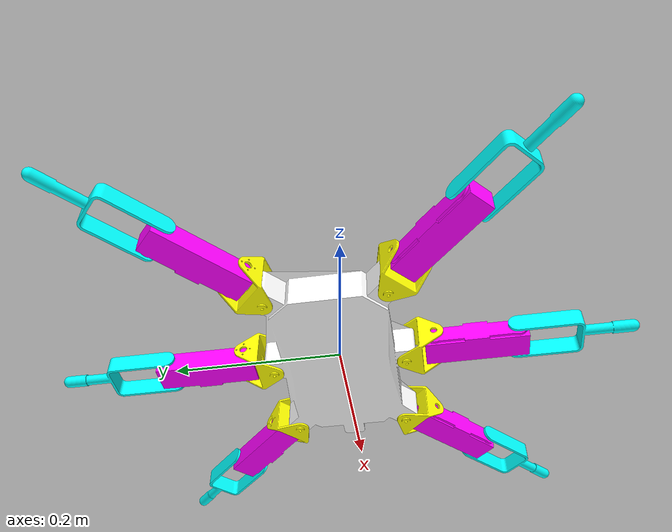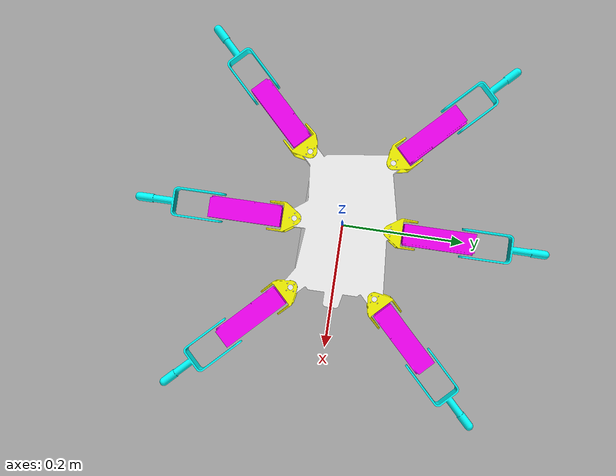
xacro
<?xml version="1.0"?>

<robot xmlns:xacro="http://www.ros.org/wiki/xacro" name="hexapod_scarab">

	<xacro:include filename="$(find hexapod_scarab)/urdf/hexy.gazebo"/>

<!-- Geometry and mass parameters -->
	<xacro:property name="body_width_s" value="0.135"/>
	<xacro:property name="body_width_b" value="0.155"/>
	<xacro:property name="body_length" value="0.220"/>
	<xacro:property name="body_heigth" value="0.04"/>
	<xacro:property name="L1_length" value="0.034"/>
	<xacro:property name="L2_length" value="0.095"/>
	<xacro:property name="L3_length" value="0.142"/>
	<xacro:property name="L_width" value="0.02"/>

	<xacro:property name="body_mass" value="1.0"/>
	<xacro:property name="L1_mass" value="0.5"/>
	<xacro:property name="L2_mass" value="0.5"/>
	<xacro:property name="L3_mass" value="0.5"/>

	<xacro:property name="max_angle" value="150"/>

	<xacro:property name="damp" value="0.9" />

	<xacro:macro name="default_inertial" params="i_value mass">
		<inertial>
			<origin xyz="0 0 0" rpy="0 0 0"/>
			<mass value="${mass}" />
			<inertia ixx="${i_value}" ixy="0.0" ixz="0.0" iyy="${i_value}" iyz="0.0" izz="${i_value}" />
		</inertial>
	</xacro:macro>

	<!-- Build a body (thorax) -->

    <link name="body">
      <visual>
        <geometry>
          <mesh filename="package://hexapod_scarab/meshes/thorax.dae"/>
        </geometry>
        <origin rpy="0 0 0" xyz="0 0 0"/>
        <material name="white">
          <color rgba="1 1 1 1"/>
        </material>
      </visual>
      <collision>
      	<origin rpy="0 0 0" xyz="0 0 0"/>
        <geometry>
          <mesh filename="package://hexapod_scarab/meshes/thorax_simpler.dae" scale="0.001 0.001 0.001"/>
        </geometry>
      </collision>
      <xacro:default_inertial i_value="1.0" mass="${body_mass}"/>
    </link>

	<!-- Build a leg -->
    <xacro:macro name="leg" params="side num x y angle coxa_angle_sign">

	    <joint name="coxa_joint_${side}${num}" type="revolute">
	      <parent link="body"/>
	      <child link="coxa_${side}${num}"/>
	      <axis xyz="0 0 ${coxa_angle_sign}"/>
	      <origin rpy="0 0 ${angle}" xyz="${x} ${y} 0"/>
	      <dynamics damping="${damp}" friction="0.8"/>
	      <limit effort ="200.0" lower="${radians(-max_angle)}" upper="${radians(max_angle)}" velocity="1.5"/>
	    </joint>

	    <link name="coxa_${side}${num}">
	      <visual>
	        <geometry>
	          <mesh filename="package://hexapod_scarab/meshes/coxa_left.dae"/>
	        </geometry>
	        <origin rpy="0 0 0" xyz="0 0 0"/>
	        <material name="yellow">
	          <color rgba="255 255 0 1"/>
	        </material>
	      </visual>
	      <collision>
	      	<origin rpy="0 0 0" xyz="0 0 0"/>
	        <geometry>
	          <mesh filename="package://hexapod_scarab/meshes/coxa_simpler.dae" scale="0.001 0.001 0.001"/>
	        </geometry>
	      </collision>
	      <xacro:default_inertial i_value="1.0" mass="${L1_mass}"/>
	    </link>

	    <link name="femur_${side}${num}">
	      <visual>
	        <geometry>
	          <mesh filename="package://hexapod_scarab/meshes/femur_left.dae" scale="0.001 0.001 0.001"/>
	        </geometry>
	        <origin rpy="0 0 0" xyz="0 0 0"/>
	        <material name="green">
	          <color rgba="255 0 255 1"/>
	        </material>
	      </visual>
	      <collision>
	      	<origin rpy="0 0 0" xyz="0 0 0"/>
	        <geometry>
	          <mesh filename="package://hexapod_scarab/meshes/femur_simpler.dae" scale="0.001 0.001 0.001"/>
	        </geometry>
	      </collision>
	      <xacro:default_inertial i_value="1.0" mass="${L2_mass}"/>
	    </link>

	    <joint name="femur_joint_${side}${num}" type="revolute">
	      <parent link="coxa_${side}${num}"/>
	      <child link="femur_${side}${num}"/>
	      <origin rpy="1.57 0 0" xyz="${L1_length} 0 0"/>
	      <axis xyz="0 0 1"/>
	      <dynamics damping="${damp}" />
	      <limit effort ="200.0" lower="${radians(-max_angle)}" upper="${radians(max_angle)}" velocity="1.5"/>
	    </joint>

	    <link name="tibia_${side}${num}">
	      <visual>
	        <geometry>
	          <mesh filename="package://hexapod_scarab/meshes/tibia_simpler.dae" scale="0.001 0.001 0.001"/>
	        </geometry>
	        <origin rpy="0 0 0" xyz="0 0 0"/>
	        <material name="blue">
	          <color rgba="0 255 255 1"/>
	        </material>
	      </visual>
	      <collision>
	      	<origin rpy="0 0 0" xyz="0 0 0"/>
	        <geometry>
	          <mesh filename="package://hexapod_scarab/meshes/tibia_simpler.dae" scale="0.001 0.001 0.001"/>
	        </geometry>
	      </collision>
	      <xacro:default_inertial i_value="1.0" mass="${L3_mass}"/>
	    </link>

	    <joint name="tibia_joint_${side}${num}" type="revolute">
	      <parent link="femur_${side}${num}"/>
	      <child link="tibia_${side}${num}"/>
	      <origin rpy="0 0 0" xyz="${L2_length} 0 0"/>
	      <axis xyz="0 0 -1"/>
	      <dynamics damping="${damp}" />
	      <limit effort ="200.0" lower="${radians(-max_angle)}" upper="${radians(max_angle)}" velocity="1.5"/>
	    </joint>

	    <link name="end_effector_${side}${num}"/>

	     <joint name="end effector_joint_${side}${num}" type="fixed">
	      <parent link="tibia_${side}${num}"/>
	      <child link="end_effector_${side}${num}"/>
	      <origin rpy="0 0 0" xyz="${L3_length} 0 0"/>
	    </joint>

	    <!-- Define actuators -->
		<transmission name="coxa_transmission_${side}${num}">
			<type>transmission_interface/SimpleTransmission</type>
			<joint name="coxa_joint_${side}${num}">
				<hardwareInterface>hardware_interface/EffortJointInterface</hardwareInterface>
			</joint>
			<actuator name="coxa_motor_${side}${num}">
				<hardwareInterface>hardware_interface/EffortJointInterface</hardwareInterface>
				<mechanicalReduction>1.0</mechanicalReduction>
				<motorTorqueConstant>1.0</motorTorqueConstant>
			</actuator>
		</transmission>

		<transmission name="femur_transmission_${side}${num}">
			<type>transmission_interface/SimpleTransmission</type>
			<joint name="femur_joint_${side}${num}">
				<hardwareInterface>hardware_interface/EffortJointInterface</hardwareInterface>
			</joint>
			<actuator name="femur_motor_${side}${num}">
				<hardwareInterface>hardware_interface/EffortJointInterface</hardwareInterface>
				<mechanicalReduction>1.0</mechanicalReduction>
				<motorTorqueConstant>1.0</motorTorqueConstant>
			</actuator>
		</transmission>

		<transmission name="tibia_transmission_${side}${num}">
			<type>transmission_interface/SimpleTransmission</type>
			<joint name="tibia_joint_${side}${num}">
				<hardwareInterface>hardware_interface/EffortJointInterface</hardwareInterface>
			</joint>
			<actuator name="tibia_motor_${side}${num}">
				<hardwareInterface>hardware_interface/EffortJointInterface</hardwareInterface>
				<mechanicalReduction>1.0</mechanicalReduction>
				<motorTorqueConstant>1.0</motorTorqueConstant>
			</actuator>
		</transmission>

    </xacro:macro>

	<!-- Building ALL legs -->
	<xacro:leg side="R" num="1" x="${body_length/2}" y="${-body_width_s/2}" angle="${radians(-45)}" coxa_angle_sign="1"/>-
	<xacro:leg side="R" num="2" x="0"                y="${-body_width_b/2}" angle="${radians(-90)}" coxa_angle_sign="1"/>
	<xacro:leg side="R" num="3" x="${-body_length/2}" y="${-body_width_s/2}" angle="${radians(-135)}" coxa_angle_sign="1"/>
	<xacro:leg side="L" num="1" x="${body_length/2}" y="${body_width_s/2}" angle="${radians(45)}" coxa_angle_sign="-1"/>
	<xacro:leg side="L" num="2" x="0"                y="${body_width_b/2}" angle="${radians(90)}" coxa_angle_sign="-1"/>
	<xacro:leg side="L" num="3" x="${-body_length/2}" y="${body_width_s/2}" angle="${radians(135)}" coxa_angle_sign="-1"/>

  </robot>
